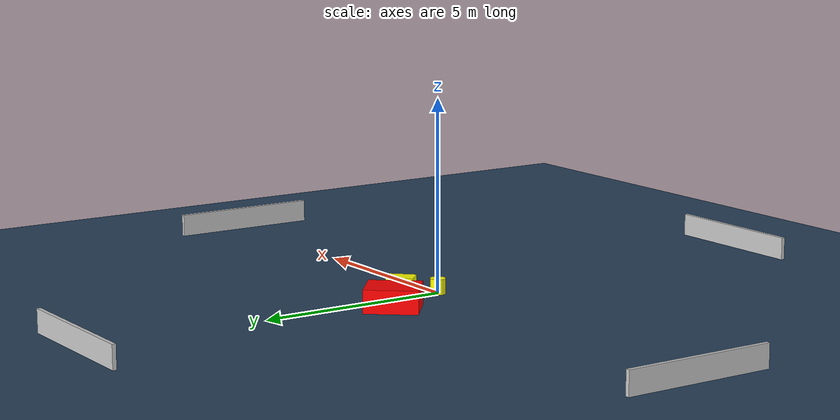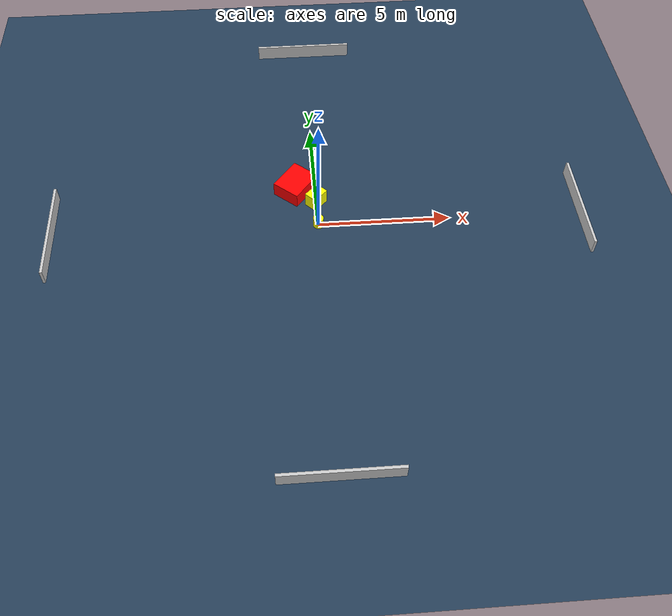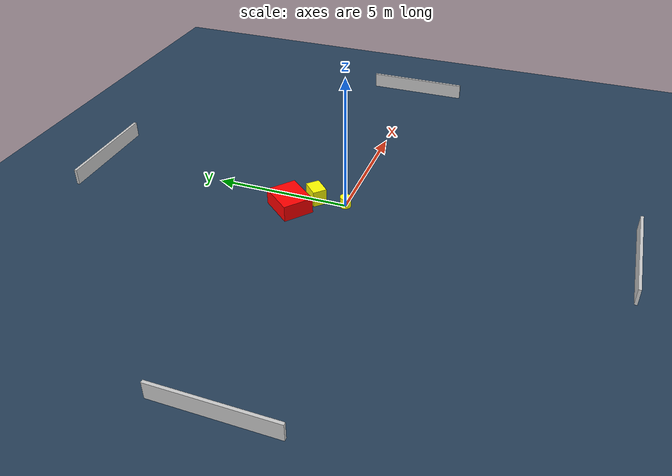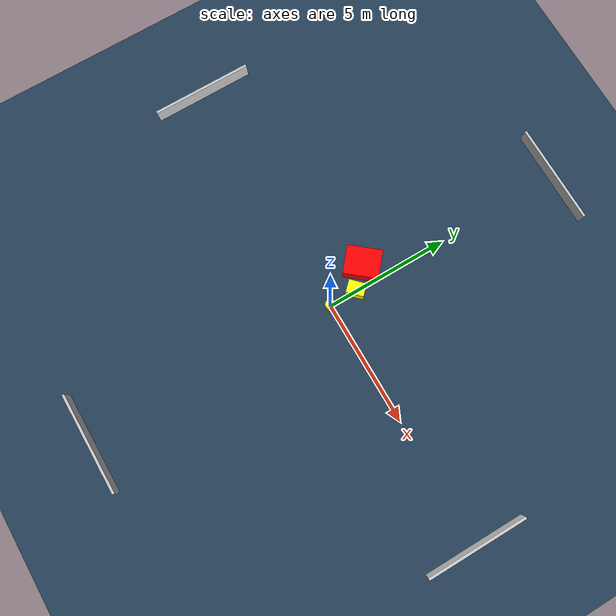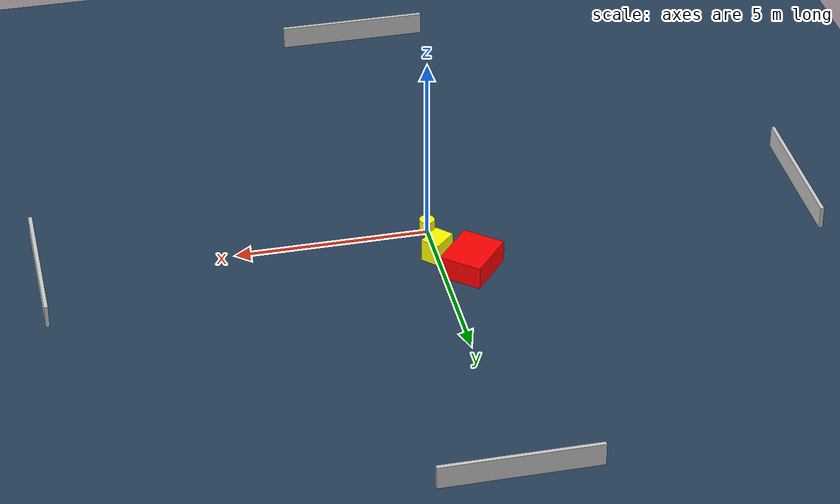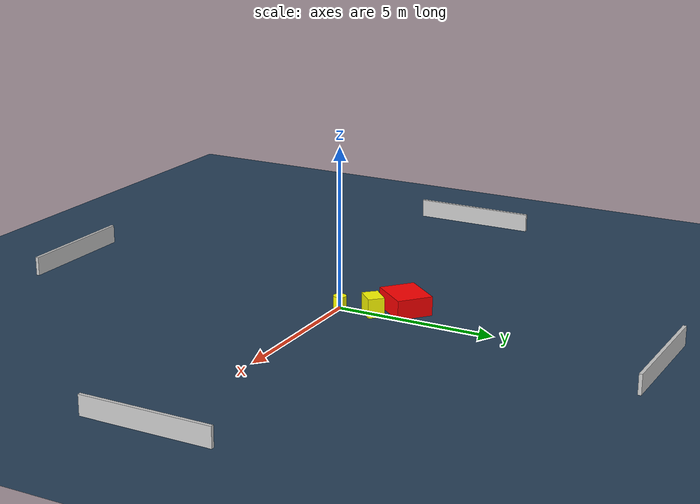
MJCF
<?xml version="1.0" ?>
<mujoco model="generated_environment">
  <option timestep="0.01" integrator="RK4" cone="elliptic"/>
  <default>
    <geom density="1"/>
  </default>
  <asset>
    <texture builtin="gradient" height="3072" name="skybox" rgb1="0.3 0.5 0.7" rgb2="0 0 0" type="skybox" width="512"/>
    <texture builtin="checker" height="300" name="groundplane" rgb1="0.2 0.3 0.4" rgb2="0.1 0.2 0.3" type="2d" width="300"/>
    <material name="groundplane" reflectance="0.2" texrepeat="5 5" texture="groundplane"/>
  </asset>
  <worldbody>
    <light dir="0 0 -1" directional="true" pos="0 0 1.5"/>
    <geom condim="3" friction="0.5 0.005 0.001" material="groundplane" name="floor" pos="0 0 0" size="0 0 0.05" type="plane"/>
    <body name="walls">
      <geom name="wall_1" condim="4" pos="-10.0 0.0 0.3" rgba="0.800000011920929 0.800000011920929 0.800000011920929 1.0" size="0.05 2.0 0.3" type="box"/>
      <geom name="wall_2" condim="4" pos="10.0 0.0 0.3" rgba="0.800000011920929 0.800000011920929 0.800000011920929 1.0" size="0.05 2.0 0.3" type="box"/>
      <geom name="wall_3" condim="4" pos="0.0 -10.0 0.3" rgba="0.800000011920929 0.800000011920929 0.800000011920929 1.0" size="2.0 0.05 0.3" type="box"/>
      <geom name="wall_4" condim="4" pos="0.0 10.0 0.3" rgba="0.800000011920929 0.800000011920929 0.800000011920929 1.0" size="2.0 0.05 0.3" type="box"/>
    </body>
    <body name="robot">
      <joint name="joint_x" type="slide" pos="0 0 0" axis="1 0 0"/>
      <joint name="joint_y" type="slide" pos="0 0 0" axis="0 1 0"/>
      <geom name="robot" type="cylinder" pos="0.0 0.0 0.2" size="0.2 0.2 0.0" mass="5.0" friction="1.0 0.005 0.0001" condim="4" rgba="1.0 1.0 0.0 1.0"/>
    </body>
    <body name="obstacle_1_movable">
      <geom name="obstacle_1_movable" condim="4" pos="-0.012652890392780598 1.1193520200984033 0.3" euler="0 0 224.57264807514088" friction="0.0 0.005 0.001" rgba="1.0 1.0 0.0 1.0" size="0.34391011702432933 0.25413183219046787 0.3" type="box" mass="0.1"/>
      <joint type="free"/>
    </body>
    <body name="obstacle_2_static">
      <geom name="obstacle_2_static" condim="4" pos="-0.7523210796298291 1.8473732393415727 0.3" euler="0 0 50.329264973606755" friction="0.0 0.005 0.001" rgba="1.0 0.0 0.0 1.0" size="0.6830510841145041 0.5617350315164091 0.3" type="box"/>
    </body>
  </worldbody>
  <actuator>
    <motor name="actuator_x" joint="joint_x" gear="1" ctrlrange="-1 1"/>
    <motor name="actuator_y" joint="joint_y" gear="1" ctrlrange="-1 1"/>
  </actuator>
</mujoco>
